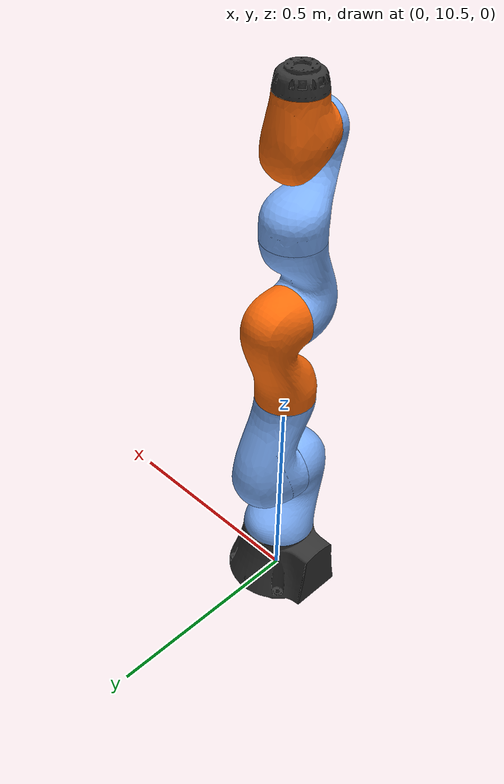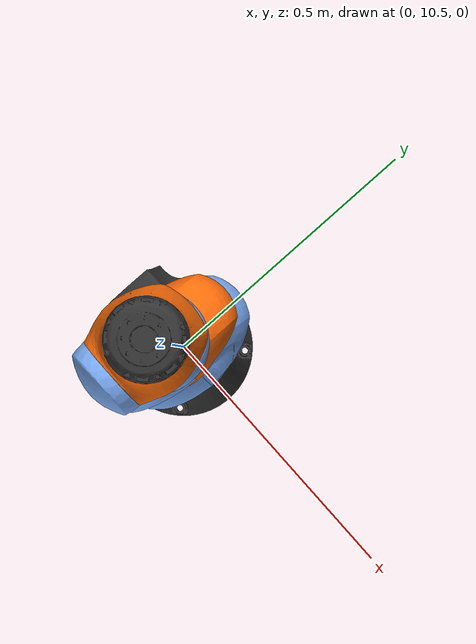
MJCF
<mujoco model="lbr_iiwa">
  <compiler angle="radian" />

  <asset>
    <mesh name="link_0" content_type="model/obj" file="meshes/link_0.obj" />
    <mesh name="link_1" content_type="model/obj" file="meshes/link_1.obj" />
    <mesh name="link_2" content_type="model/obj" file="meshes/link_2.obj" />
    <mesh name="link_3" content_type="model/obj" file="meshes/link_3.obj" />
    <mesh name="link_4" content_type="model/obj" file="meshes/link_4.obj" />
    <mesh name="link_5" content_type="model/obj" file="meshes/link_5.obj" />
    <mesh name="link_6" content_type="model/obj" file="meshes/link_6.obj" />
    <mesh name="link_7" content_type="model/obj" file="meshes/link_7.obj" />
  </asset>

  <worldbody>
    <body name="BP_Kuka_Arm_C_UAID_047C163BA5E728C302_2093461480__root" pos="8.470329472543004e-24 10.5 0" quat="1 0 0 0"><geom type="mesh" contype="0" conaffinity="0" group="1" density="0" rgba="0.2 0.2 0.2 1" mesh="link_0" />
    <geom type="mesh" rgba="0.2 0.2 0.2 1" mesh="link_0" />
    <body name="lbr_iiwa_link_1" pos="0 0 0.1575">
      <inertial pos="0 -0.03 0.12" mass="4" diaginertia="0.1 0.09 0.02" />
      <joint name="lbr_iiwa_joint_1" pos="0 0 0" axis="0 0 1" range="-2.96706 2.96706" actuatorfrcrange="-300 300" damping="0.5" />
      <geom type="mesh" contype="0" conaffinity="0" group="1" density="0" rgba="0.5 0.7 1 1" mesh="link_1" />
      <geom type="mesh" rgba="0.5 0.7 1 1" mesh="link_1" />
      <body name="lbr_iiwa_link_2" pos="0 0 0.2025" quat="0 0 0.707107 0.707107">
        <inertial pos="0.0003 0.059 0.042" quat="0.707107 0.707107 0 0" mass="4" diaginertia="0.05 0.044 0.018" />
        <joint name="lbr_iiwa_joint_2" pos="0 0 0" axis="0 0 1" range="-2.0944 2.0944" actuatorfrcrange="-300 300" damping="0.5" />
        <geom type="mesh" contype="0" conaffinity="0" group="1" density="0" rgba="0.5 0.7 1 1" mesh="link_2" />
        <geom type="mesh" rgba="0.5 0.7 1 1" mesh="link_2" />
        <body name="lbr_iiwa_link_3" pos="0 0.2045 0" quat="0 0 0.707107 0.707107">
          <inertial pos="0 0.03 0.13" mass="3" diaginertia="0.08 0.075 0.01" />
          <joint name="lbr_iiwa_joint_3" pos="0 0 0" axis="0 0 1" range="-2.96706 2.96706" actuatorfrcrange="-300 300" damping="0.5" />
          <geom type="mesh" contype="0" conaffinity="0" group="1" density="0" rgba="1 0.423529 0.0392157 1" mesh="link_3" />
          <geom type="mesh" rgba="1 0.423529 0.0392157 1" mesh="link_3" />
          <body name="lbr_iiwa_link_4" pos="0 0 0.2155" quat="0.707107 0.707107 0 0">
            <inertial pos="0 0.067 0.034" quat="0.707107 0.707107 0 0" mass="2.7" diaginertia="0.03 0.029 0.01" />
            <joint name="lbr_iiwa_joint_4" pos="0 0 0" axis="0 0 1" range="-2.0944 2.0944" actuatorfrcrange="-300 300" damping="0.5" />
            <geom type="mesh" contype="0" conaffinity="0" group="1" density="0" rgba="0.5 0.7 1 1" mesh="link_4" />
            <geom type="mesh" rgba="0.5 0.7 1 1" mesh="link_4" />
            <body name="lbr_iiwa_link_5" pos="0 0.1845 0" quat="0 0 0.707107 0.707107">
              <inertial pos="0.0001 0.021 0.076" mass="1.7" diaginertia="0.02 0.018 0.005" />
              <joint name="lbr_iiwa_joint_5" pos="0 0 0" axis="0 0 1" range="-2.96706 2.96706" actuatorfrcrange="-300 300" damping="0.5" />
              <geom type="mesh" contype="0" conaffinity="0" group="1" density="0" rgba="0.5 0.7 1 1" mesh="link_5" />
              <geom type="mesh" rgba="0.5 0.7 1 1" mesh="link_5" />
              <body name="lbr_iiwa_link_6" pos="0 0 0.2155" quat="0.707107 0.707107 0 0">
                <inertial pos="0 0.0006 0.0004" quat="0.707107 0.707107 0 0" mass="1.8" diaginertia="0.005 0.0047 0.0036" />
                <joint name="lbr_iiwa_joint_6" pos="0 0 0" axis="0 0 1" range="-2.0944 2.0944" actuatorfrcrange="-300 300" damping="0.5" />
                <geom type="mesh" contype="0" conaffinity="0" group="1" density="0" rgba="1 0.423529 0.0392157 1" mesh="link_6" />
                <geom type="mesh" rgba="1 0.423529 0.0392157 1" mesh="link_6" />
                <body name="lbr_iiwa_link_7" pos="0 0.081 0" quat="0 0 0.707107 0.707107">
                  <inertial pos="0 0 0.02" mass="0.3" diaginertia="0.001 0.001 0.001" />
                  <joint name="lbr_iiwa_joint_7" pos="0 0 0" axis="0 0 1" range="-3.05433 3.05433" actuatorfrcrange="-300 300" damping="0.5" />
                  <geom type="mesh" contype="0" conaffinity="0" group="1" density="0" rgba="0.2 0.2 0.2 1" mesh="link_7" />
                  <geom type="mesh" rgba="0.2 0.2 0.2 1" mesh="link_7" />
                </body>
              </body>
            </body>
          </body>
        </body>
      </body>
    </body>
  </body></worldbody>
</mujoco>
